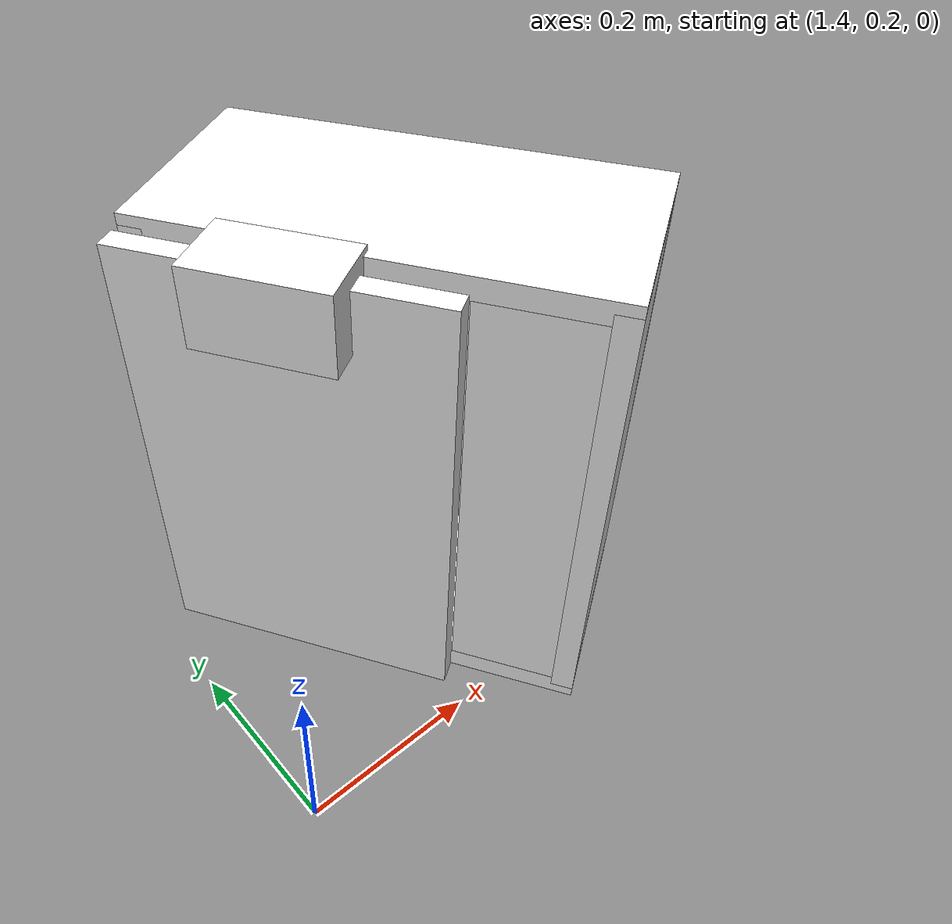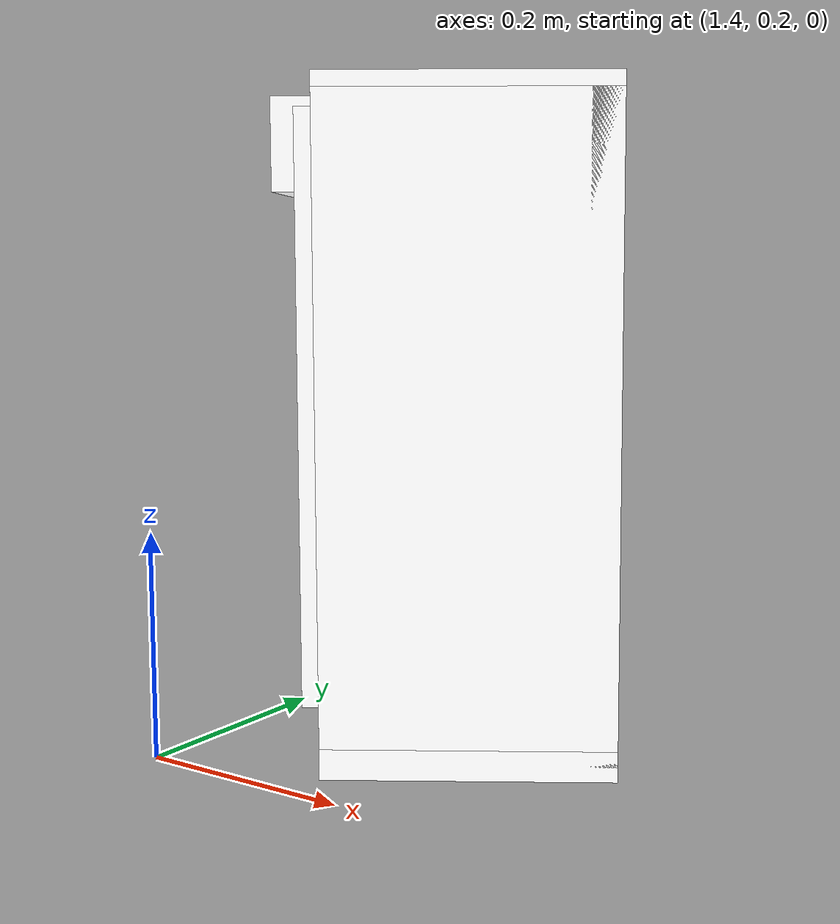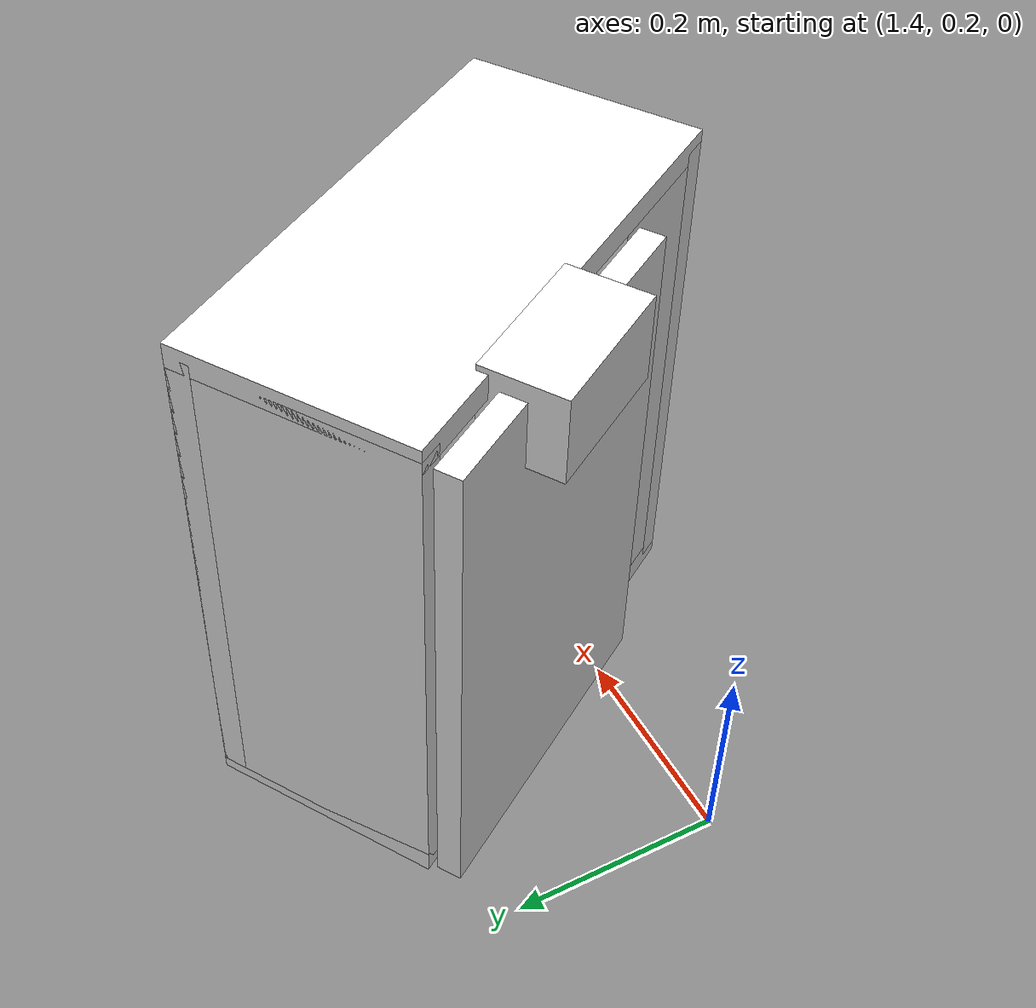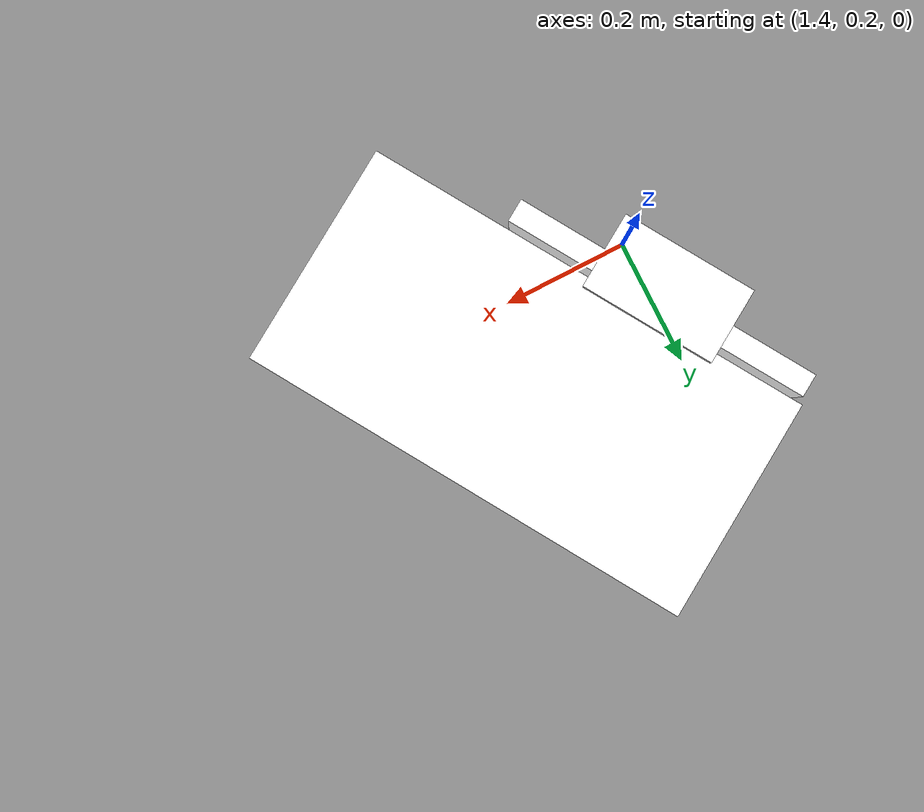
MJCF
<mujoco model="cabinet">
    <compiler angle="radian" eulerseq='zxy' />
    <option gravity = "0 0 0" />
    <option>
        <flag contact = "disable"/>
    </option>
    <statistic	extent="1.0" center="0.0 0.0 0.0"/>
    <visual>
        <map fogstart="3" fogend="5" force="0.1" znear=" 0.100000 " zfar=" 12.000000 "/>
    </visual>
    <size njmax="500" nconmax="100" />
    <actuator>
        <velocity joint="bottom_left_hinge" name="viva_revolution" kv='10'></velocity>
    </actuator>
    <asset>
        <texture builtin="flat" name="tabletex" height="32" width="32" rgb1="1 1 1" type="cube"></texture>
        <texture builtin="flat" name="objtex" height="32" width="32" rgb1="1 1 1" type="cube"></texture>
        <texture builtin="flat" name="handletex" height="32" width="32" rgb1="1 1 1" type="cube"></texture>
        <texture builtin="flat" name="wallpaper" height="32" width="32" rgb1="1 1 1" type="cube"></texture>
        <texture builtin="flat" name="kp" height="32" width="32" rgb1="1 1 1" type="cube"></texture>
        <material name="geomTable" shininess="0.03" specular="0.75" texture="tabletex"></material>
        <material name="geomObj" shininess="0.03" specular="0.75" texture="objtex"></material>
        <material name="geomHandle" shininess="0.03" specular="0.75" texture="handletex"></material>
        <material name="bg" shininess="0.03" specular="0.75" texture="wallpaper"></material>
        <material name="geomKeypad" shininess="0.03" specular="0.75" texture="kp"></material>
    </asset>
    <worldbody>
        <body name="cabinet_bottom" pos= " 1.641390 0.342865 0.077127 "  quat= " -0.275320 0.000000 0.000000 0.961353" >
            <inertial pos="0 0 0" mass="1" diaginertia="1 1 1" />
            <geom size= " 0.106572 0.217266 0.011283 "  type="box" material="geomObj" name="b"/>
            <body name="cabinet_left" pos= " 0.000000 -0.205983 0.237392 " >
                <inertial pos="0 0 0" mass="1" diaginertia="1 1 1" />
                <geom size= " 0.106572 0.011283 0.237392 "  type="box" material="geomObj" name="c" />
            </body>
            <body name="cabinet_right" pos= " 0.000000 0.205983 0.237392 " >
                <inertial pos="0 0 0" mass="1" diaginertia="1 1 1" />
                <geom size= " 0.106572 0.011283 0.237392 "  type="box" material="geomObj" name="d" />
            </body>
            <body name="cabinet_top" pos= " 0.000000 0.000000 0.474784 " >
                <inertial pos="0 0 0" mass="1" diaginertia="1 1 1" />
                <geom size= " 0.106572 0.217266 0.011283 "  type="box" material="geomObj" name="e"/>
            </body>
            <body name="cabinet_back" pos= " -0.095289 0.000000 0.237392 "  >
                <inertial pos="0 0 0" mass="1" diaginertia="1 1 1" />
                <geom size= " 0.011283 0.217266 0.237392 "  type="box" material="geomObj" name="f" />
            </body>
            <body name="cabinet_keypad" pos= " 0.011283 0.151268 0.237392 " >
                <inertial pos="0 0 0" mass="1" diaginertia="1 1 1" />
                <geom size= " 0.095289 0.064999 0.226109 "  type="box" material="geomKeypad" name="keypizzlemynizzle" />
            </body>
            <body name="cabinet_left_hinge" pos= " 0.106572 -0.064999 0.000000 " >
                <inertial pos= " 0.020000 0.000000 0.237392 "  mass="1" diaginertia="1 1 1" />
                <joint name="bottom_left_hinge" type="hinge" pos="0 0 0" axis="0 1 0" limited="true" range= "0 2.3"  />
                <geom size= " 0.011283 0.152268 0.237392 "  pos= " 0.020000 0.000000 0.237392 "  type="box" material="geomObj" name="g"/>
                <body name="handle_link" pos= " 0.026643 0.000000 0.452218 " >
                    <inertial pos="0 0 0" mass="1" diaginertia="1 1 1" />
                    <geom size= " 0.036804 0.064999 0.039075 "  type="box" material="geomHandle" name="h"/>
                </body>
            </body>
        </body>
        <body name="external_camera_body_0" pos="0.0 0 0.00">
            <camera euler="-1.57 1.57 0.0" fovy=" 54.280851 " name="external_camera_0" pos="0.0 0 0"></camera>
            <inertial pos= " 0.00 0.0 0.000000 " mass="1" diaginertia="1 1 1" />
            <joint name="cam_j" pos="0.0 0 0" axis = "1 0 0" type="free" />
        </body>
    </worldbody>
</mujoco>
